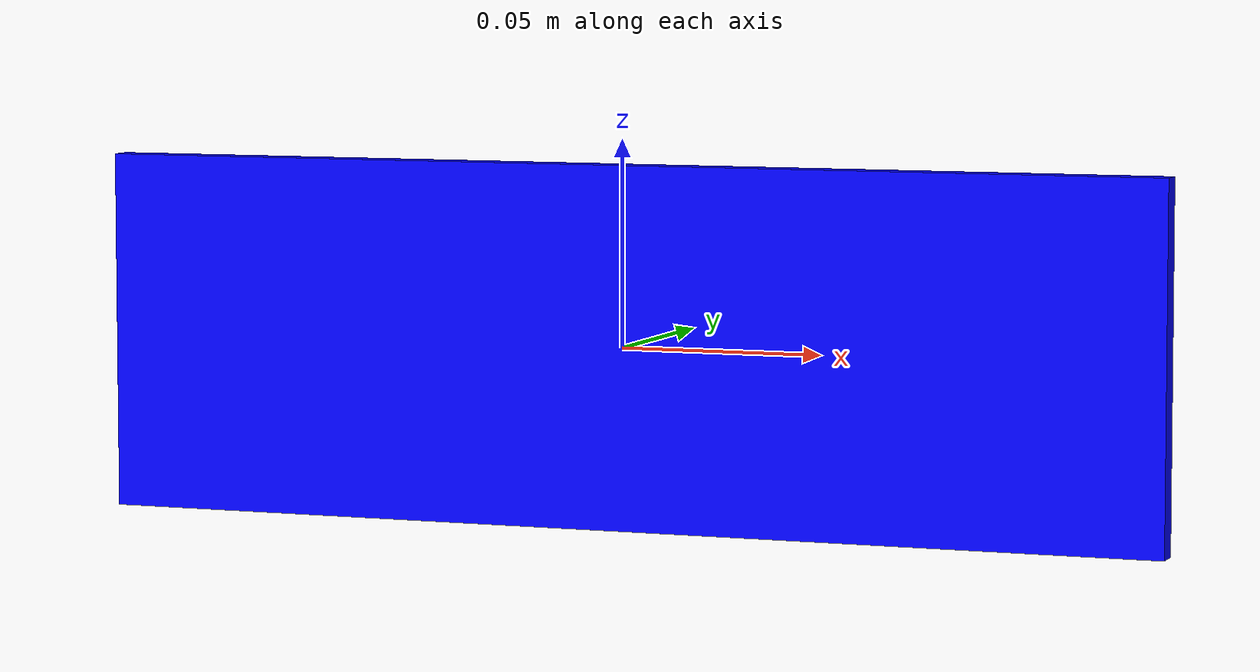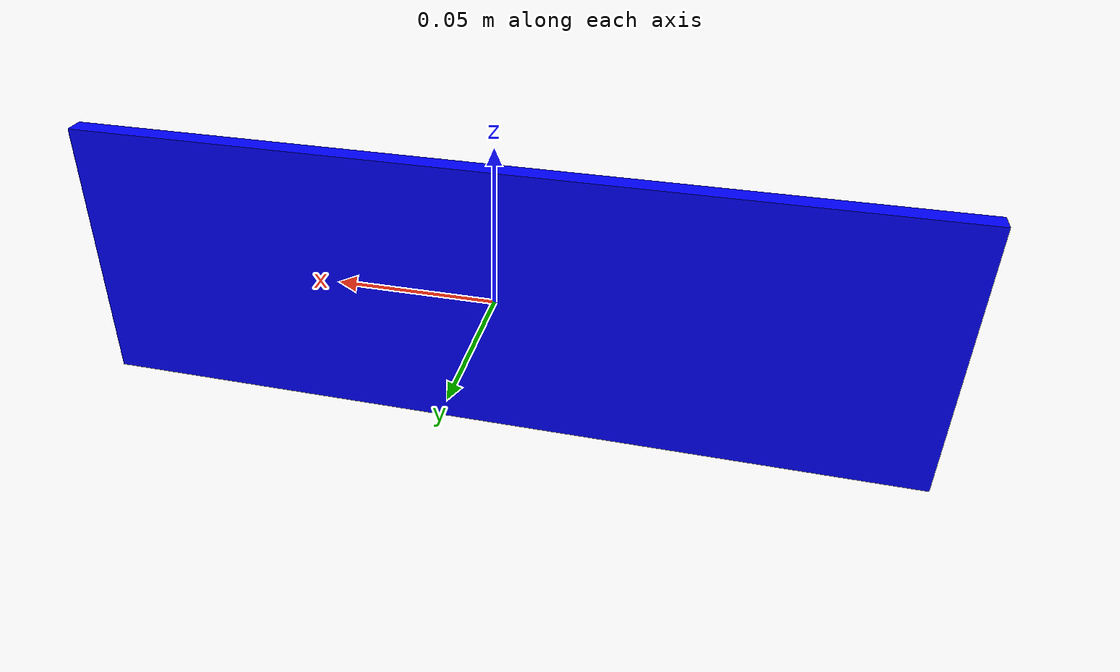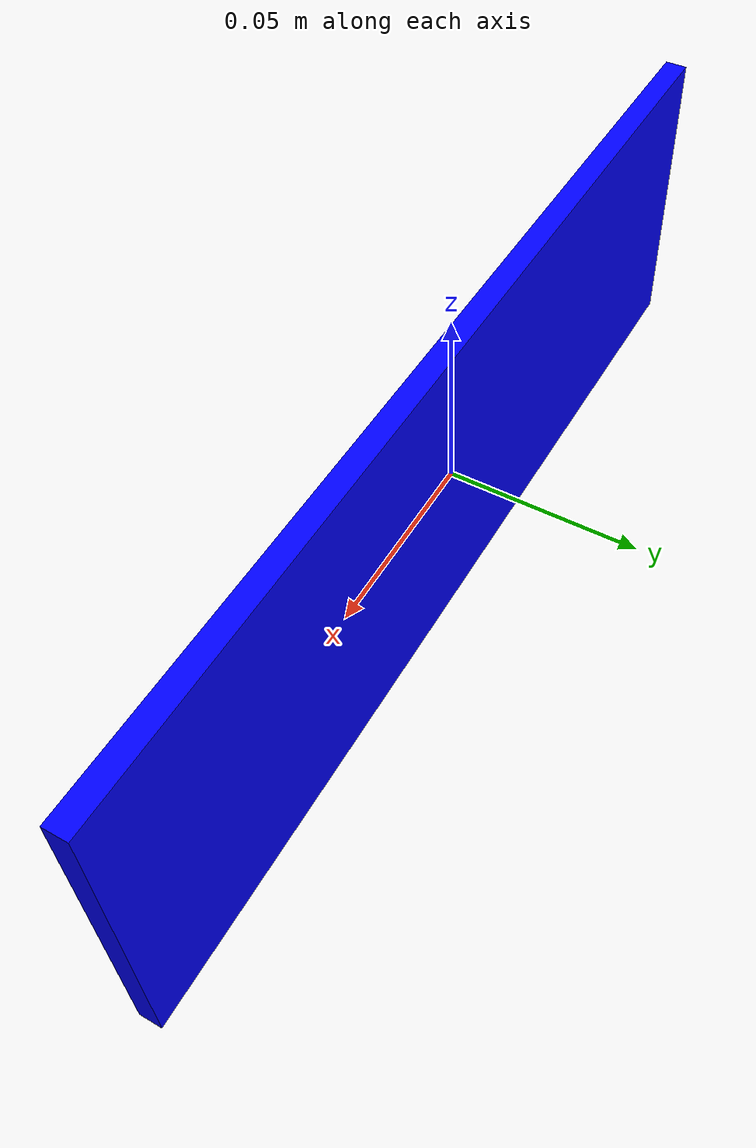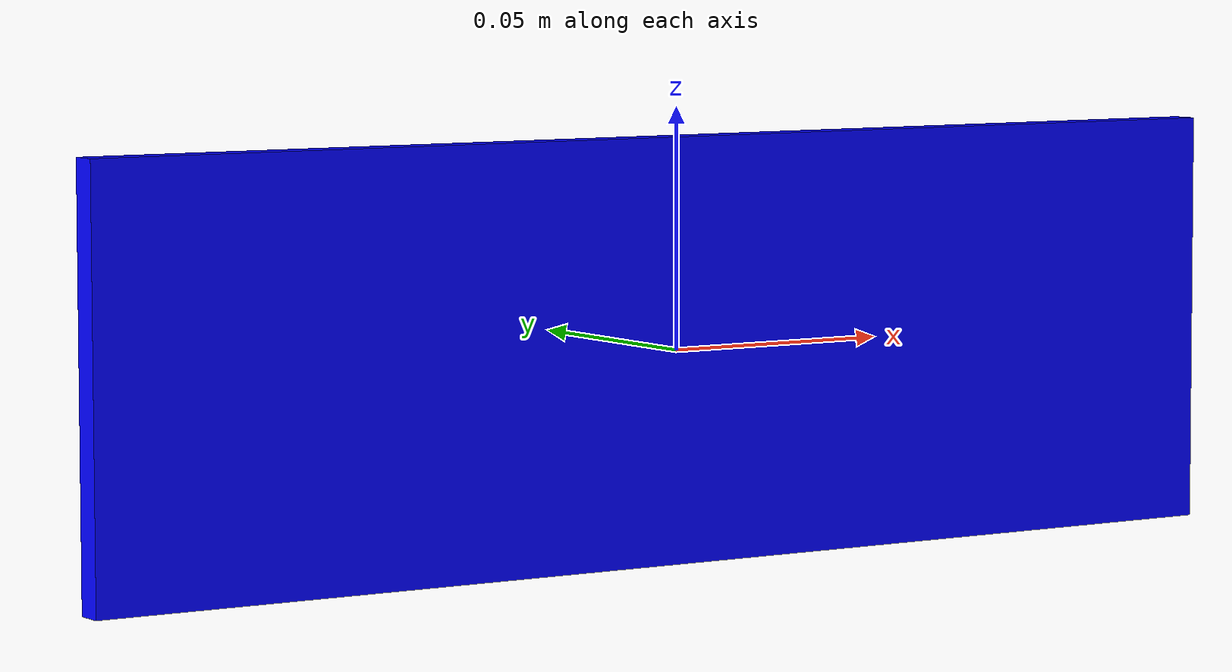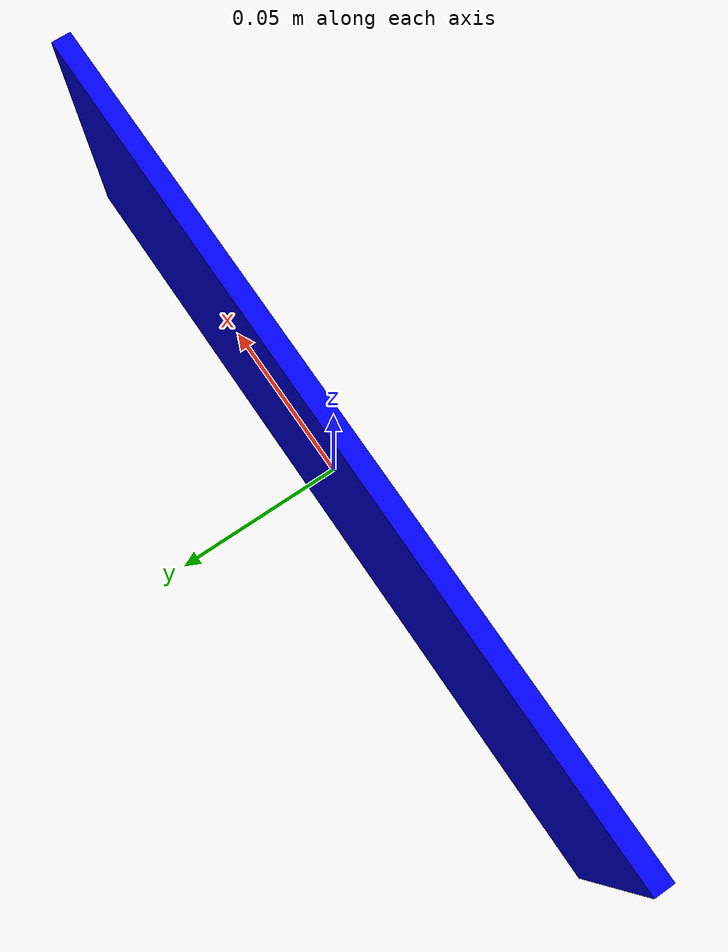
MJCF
<?xml version="1.0" encoding="utf-8"?>
<mujoco model="vention_bracket_with_aruco">
    <include file="vention_bracket.xml"/>
    <include file="../aruco_markers/aruco_markers.xml"/>

    <worldbody>
        <body name="vention_bracket_with_aruco">

            <!-- Central site used for reference or visualization -->
            <site name="center" pos="0 0 0" euler="0 0 0" type="sphere" size="0.0001 0.0001 0.0001" rgba="0.9 0.9 0.9 1" group="4"/>

            <!-- ArUco marker 1 -->
            <geom name="aruco1_collider" type="box" size="0.0225 0.0225 0.0005" material="card" pos="0.1 -0.025 0.044" euler="0 3.14 1.57" rgba="1 1 1 1" conaffinity="0" contype="0" group="3"/>
            <geom type="box" size="0.0175 0.0175 0.001" material="aruco_1" pos="0.1 -0.025 0.044" euler="0 3.14 1.57" rgba="1 1 1 1" conaffinity="0" contype="0" group="3"/>
            <site name="aruco_1" pos="0.1 -0.025 0.044" euler="0 3.14 1.57" type="sphere" size="0.0001" group="4"/>

            <!-- ArUco marker 2 -->
            <geom name="aruco2_collider" type="box" size="0.0225 0.0225 0.0005" material="card" pos="-0.1 -0.025 0.044" euler="0 3.14 1.57" rgba="1 1 1 1" conaffinity="0" contype="0" group="3"/>
            <geom type="box" size="0.0175 0.0175 0.0006" material="aruco_2" pos="-0.1 -0.025 0.044" euler="0 3.14 1.57" rgba="1 1 1 1" conaffinity="0" contype="0" group="3"/>
            <site name="aruco_2" pos="-0.1 -0.025 0.044" euler="0 3.14 1.57" type="sphere" size="0.0001" group="4"/>
        </body>
    </worldbody>
</mujoco>

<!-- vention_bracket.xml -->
<mujoco model="vention_bracket">
    <compiler angle="radian" meshdir="assets" texturedir="assets" autolimits="true"/>
    <asset>
        <material name="cube_1"/>
    </asset>
    <default>
        <material specular="0.8" shininess="0.25"/>
        <default class="cube_visual">
            <geom type="mesh" contype="0" conaffinity="0" group="2"/>
        </default>
        <default class="cube_collision">
            <geom type="mesh" group="3"/>
        </default>
        <site size="0.01" rgba="0.5 0.5 0.5 0.3" group="4"/>
        <geom euler="0 1.57 0"/>
    </default>
    <worldbody>
        <body name="vention_bracket">
            <geom name="collider" type="box" size="0.044 0.003 0.134" material="cube_1" class="cube_collision" density="1000" friction="1 0.005 0.0001"/>
            <geom type="box" size="0.044 0.003 0.134" material="cube_1" class="cube_visual" rgba="0 0 1 1"/>
        </body>
    </worldbody>
</mujoco>

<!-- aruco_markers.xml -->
<mujoco>
    <asset>
        <!-- Definition of ArUco Textures -->
        <texture type="2d" name="marker0" file="aruco_4x4_0.png"/>
        <texture type="2d" name="marker1" file="aruco_4x4_1.png"/>
        <texture type="2d" name="marker2" file="aruco_4x4_2.png"/>

        <!-- Definition of Materials Using ArUco Textures -->
        <material name="card"/>
        <material name="aruco_0" texture="marker0"/>
        <material name="aruco_1" texture="marker1"/>
        <material name="aruco_2" texture="marker2"/>
    </asset>
</mujoco>
